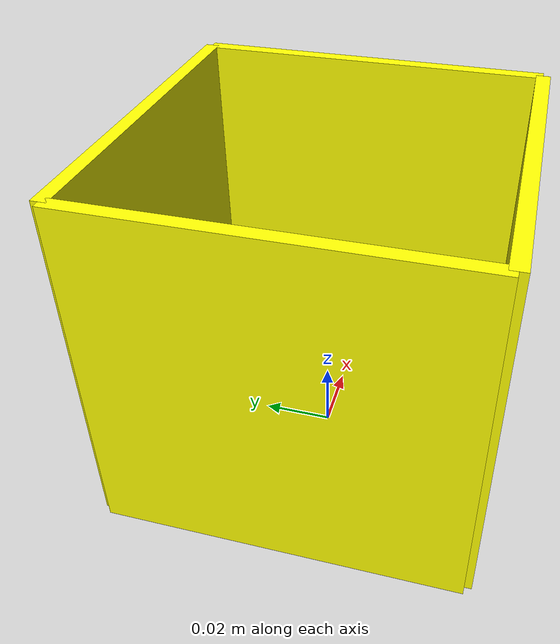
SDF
<?xml version="1.0" ?>
<sdf version="1.5">
  <model name="wrc_container_a">
    <static>true</static>
    <link name="link">
      <inertial>
        <mass>1.0</mass>
      </inertial>
      <collision name="bottom">
        <pose>0 0 0.002 0 0 0</pose>
        <geometry>
          <box>
            <size>0.1 0.1 0.004</size>
          </box>
        </geometry>
      </collision>
      <visual name="bottom_v">
        <pose>0 0 0.002 0 0 0</pose>
        <geometry>
          <box>
            <size>0.1 0.1 0.004</size>
          </box>
        </geometry>
        <material>
          <name>yellow</name>
          <ambient>1.0 1.0 0.0 1.0</ambient>
          <diffuse>1.0 1.0 0.0 1.0</diffuse>
          <specular>0.1 0.1 0.1 1.0</specular>
          <shininess>5.0</shininess>
        </material>
      </visual>
      <collision name="front">
        <pose>0 0.05 0.05 0 0 0</pose>
        <geometry>
          <box>
            <size>0.1 0.004 0.1</size>
          </box>
        </geometry>
      </collision>
      <visual name="front_v">
        <pose>0 0.05 0.05 0 0 0</pose>
        <geometry>
          <box>
            <size>0.1 0.004 0.1</size>
          </box>
        </geometry>
        <material>
          <name>yellow</name>
          <ambient>1.0 1.0 0.0 1.0</ambient>
          <diffuse>1.0 1.0 0.0 1.0</diffuse>
          <specular>0.1 0.1 0.1 1.0</specular>
          <shininess>5.0</shininess>
        </material>
      </visual>
      <collision name="back">
        <pose>0 -0.05 0.05 0 0 0</pose>
        <geometry>
          <box>
            <size>0.1 0.004 0.1</size>
          </box>
        </geometry>
      </collision>
      <visual name="back_v">
        <pose>0 -0.05 0.05 0 0 0</pose>
        <geometry>
          <box>
            <size>0.1 0.004 0.1</size>
          </box>
        </geometry>
        <material>
          <name>yellow</name>
          <ambient>1.0 1.0 0.0 1.0</ambient>
          <diffuse>1.0 1.0 0.0 1.0</diffuse>
          <specular>0.1 0.1 0.1 1.0</specular>
          <shininess>5.0</shininess>
        </material>
      </visual>
      <collision name="left">
        <pose>0.05 0 0.05 0 0 0</pose>
        <geometry>
          <box>
            <size>0.004 0.1 0.1</size>
          </box>
        </geometry>
      </collision>
      <visual name="left_v">
        <pose>0.05 0 0.05 0 0 0</pose>
        <geometry>
          <box>
            <size>0.004 0.1 0.1</size>
          </box>
        </geometry>
        <material>
          <name>yellow</name>
          <ambient>1.0 1.0 0.0 1.0</ambient>
          <diffuse>1.0 1.0 0.0 1.0</diffuse>
          <specular>0.1 0.1 0.1 1.0</specular>
          <shininess>5.0</shininess>
        </material>
      </visual>
      <collision name="right">
        <pose>-0.05 0 0.05 0 0 0</pose>
        <geometry>
          <box>
            <size>0.004 0.1 0.1</size>
          </box>
        </geometry>
      </collision>
      <visual name="right_v">
        <pose>-0.05 0 0.05 0 0 0</pose>
        <geometry>
          <box>
            <size>0.004 0.1 0.1</size>
          </box>
        </geometry>
        <material>
          <name>yellow</name>
          <ambient>1.0 1.0 0.0 1.0</ambient>
          <diffuse>1.0 1.0 0.0 1.0</diffuse>
          <specular>0.1 0.1 0.1 1.0</specular>
          <shininess>5.0</shininess>
        </material>
      </visual>
    </link>
  </model>
</sdf>
